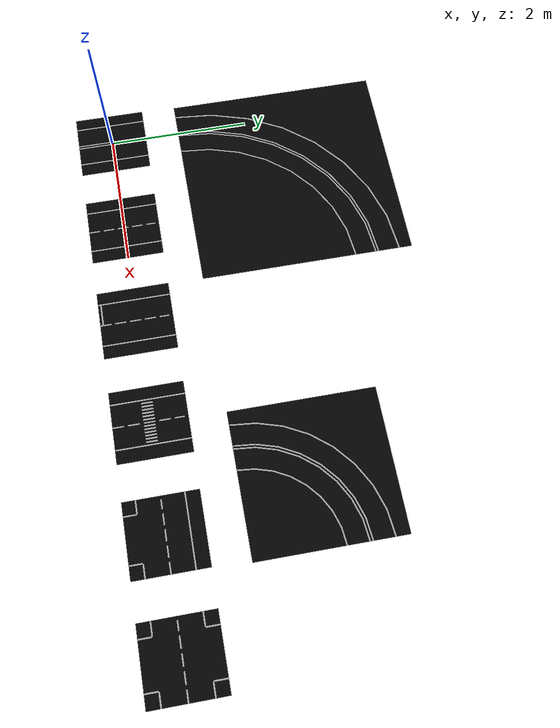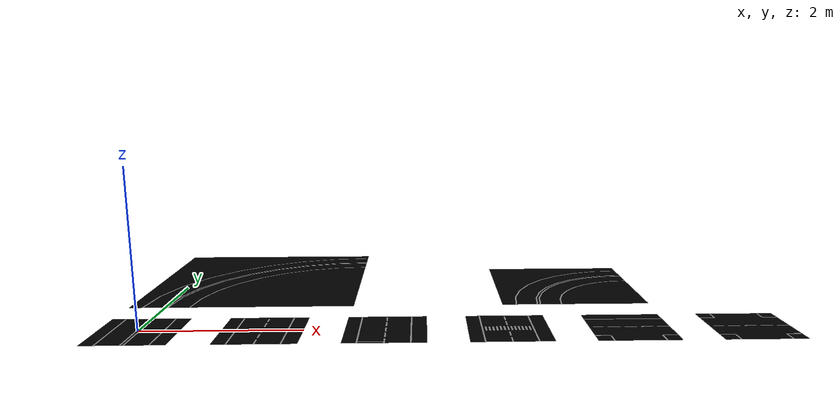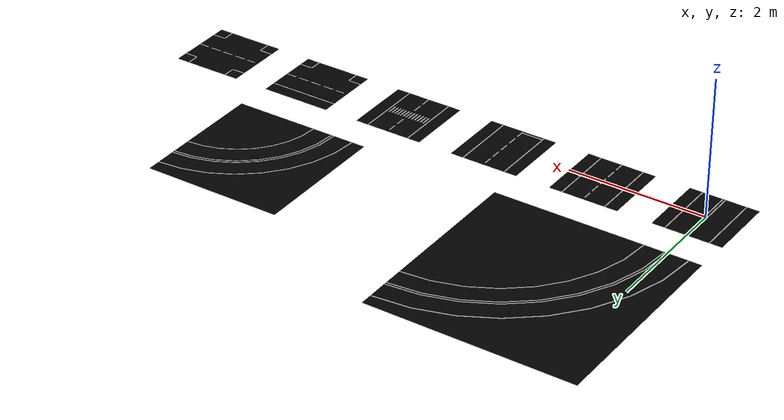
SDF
<?xml version="1.0" ?>
<sdf version="1.6">
  <model name="autcup_city_tiles">
    <static>true</static>

    <link name="link">
      <collision name="collision">
        <geometry>
          <mesh>
            <uri>model://autocone_description/urdf/models/autcup_city_tiles/autcup_city_tiles.dae</uri>
          </mesh>
        </geometry>
        <surface>
            <contact>
              <collide_without_contact>true</collide_without_contact>
            </contact>
          </surface>

      </collision>

      <visual name="visual">
        <cast_shadows>true</cast_shadows>
        <geometry>
          <mesh>
            <uri>model://autocone_description/urdf/models/autcup_city_tiles/autcup_city_tiles.dae</uri>
          </mesh>
        </geometry>
      </visual>
    </link>
  </model>
</sdf>
